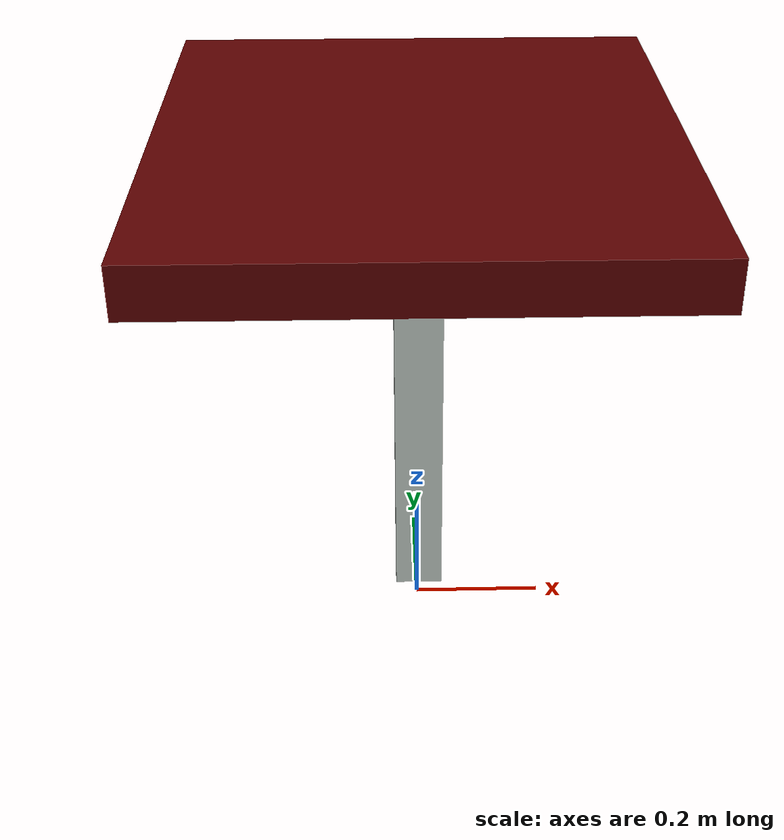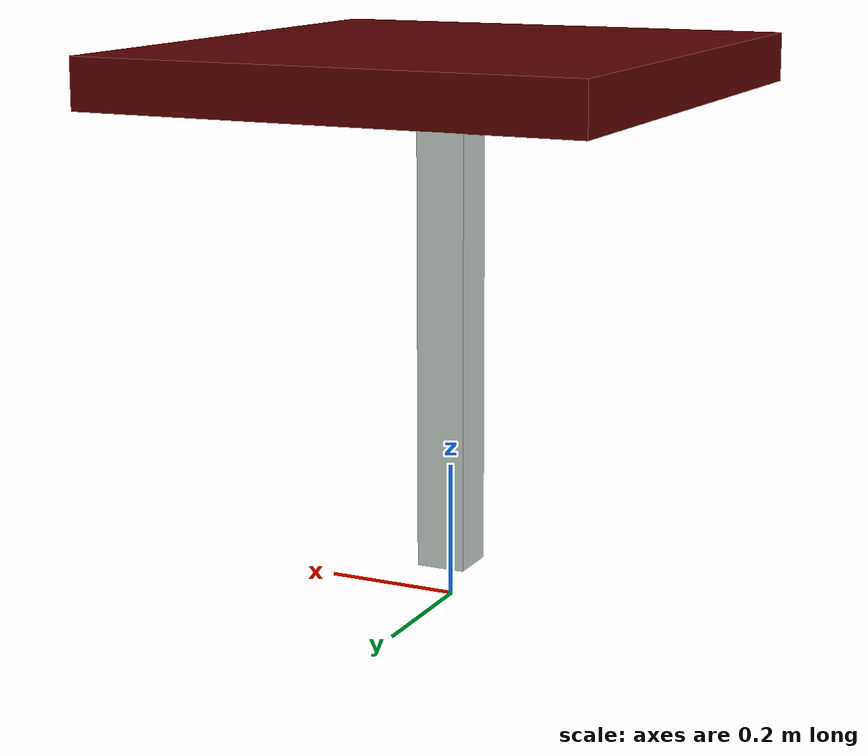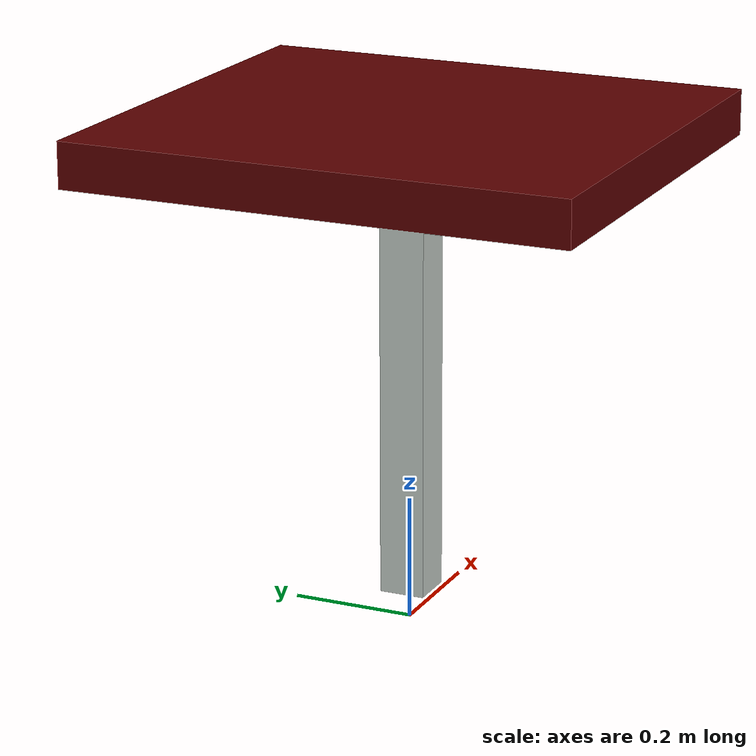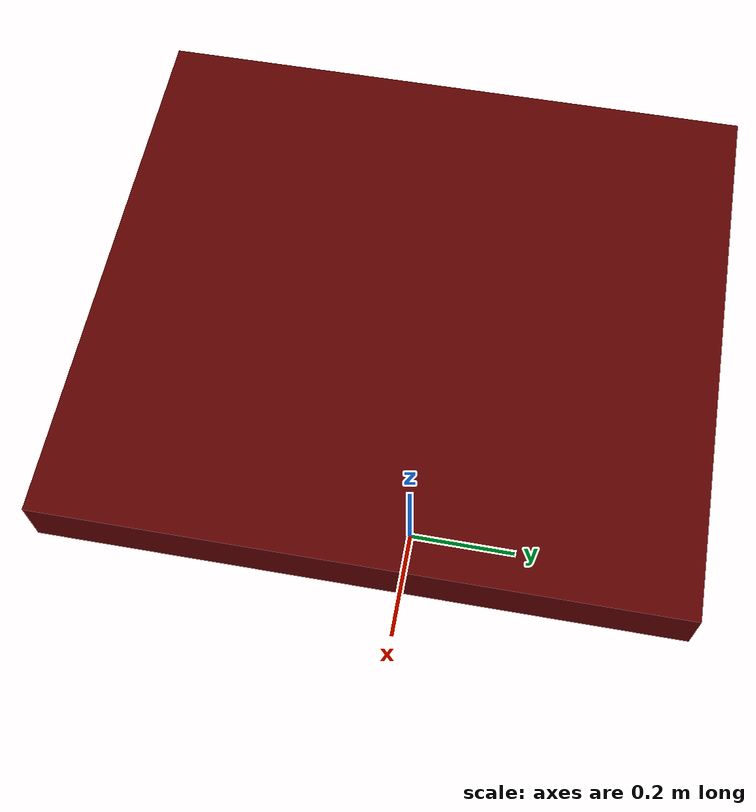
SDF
<?xml version="1.0"?>

<sdf version="1.6">
  <model name="bartender_dispenser">
    <pose>0.0 0.0 0.0 0.0 0.0 0.0</pose>
    <static>true</static>

    <link name="bartender_main_link">
      <pose>0.0 0.0 0.05 0.0 0.0 0.0</pose>

      <collision name="collision">
        <pose>0 0 0.733276 0 0 0</pose>
        <geometry>
          <box>
            <size>0.737096 0.810806 0.07371</size>
          </box>
        </geometry>
      </collision>

      <visual name="visual">
        <pose>0 0 0 0 0 0</pose>
        <geometry>
          <mesh>
            <uri>model://bartender_dispenser/meshes/table_dispenser_nolegs.dae</uri>
          </mesh>
        </geometry>
      </visual>
    </link>

    <plugin name="teleport_dispenser" filename="libteleport_dispenser.so">
    </plugin>

  </model>
</sdf>
